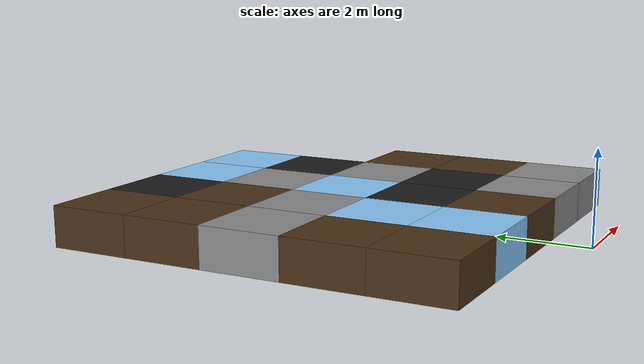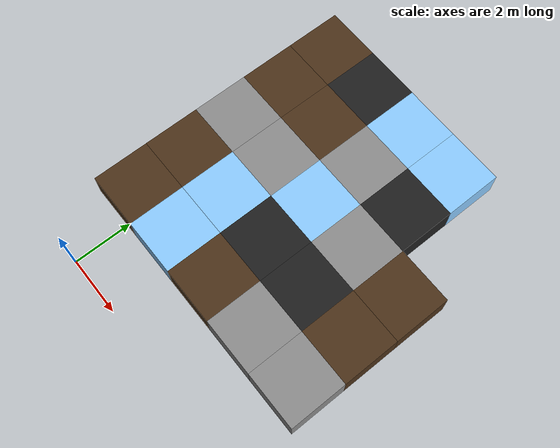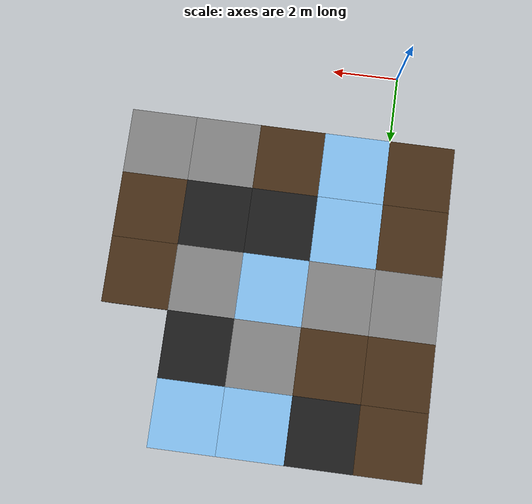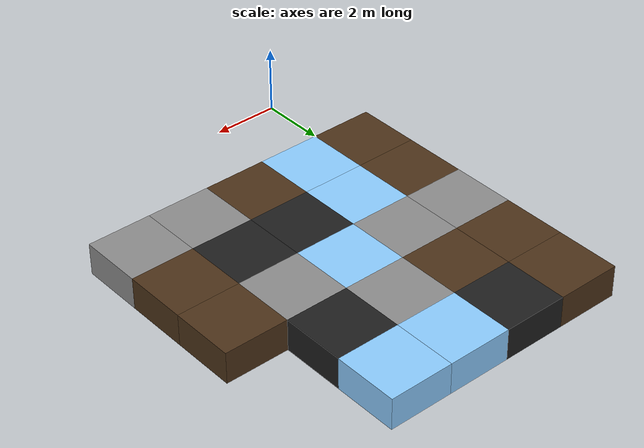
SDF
<sdf version="1.5">
 <world name="squares_example">
  <model name="tile_15_17">
   <static>true</static>
   <pose>-1.000 3.000 -0.500 0 0 0</pose>
   <link name="link">
    <collision name="col">
     <geometry><box><size>2.0 2.0 1.0</size></box></geometry>
     <surface>
      <friction>
       <ode><mu>0.6</mu><mu2>0.4</mu2><fdir1>1 0 0</fdir1><slip1>0.08</slip1><slip2>0.08</slip2></ode>
       <torsional>
        <coefficient>0.03</coefficient>
        <use_patch_radius>false</use_patch_radius>
        <surface_radius>0.12</surface_radius>
        <ode><slip>0.0</slip></ode>
       </torsional>
      </friction>
      <bounce><restitution_coefficient>0.0</restitution_coefficient><threshold>0.1</threshold></bounce>
      <contact>
       <ode><kp>1000000.0</kp><kd>10000.0</kd><max_vel>0.01</max_vel><min_depth>0.0</min_depth></ode>
      </contact>
     </surface>
    </collision>
    <visual name="visual">
     <geometry><box><size>2.0 2.0 1.0</size></box></geometry>
     <material>
      <diffuse>0.30 0.20 0.10 1</diffuse>
      <ambient>0 0 0 0</ambient>
      <specular>0 0 0 1</specular>
      <emissive>0 0 0 1</emissive>
     </material>
    </visual>
   </link>
  </model>
  <model name="tile_16_17">
   <static>true</static>
   <pose>1.000 3.000 -0.500 0 0 0</pose>
   <link name="link">
    <collision name="col">
     <geometry><box><size>2.0 2.0 1.0</size></box></geometry>
     <surface>
      <friction>
       <ode><mu>0.03</mu><mu2>0.02</mu2><fdir1>1 0 0</fdir1><slip1>0.03</slip1><slip2>0.03</slip2></ode>
       <torsional>
        <coefficient>0.005</coefficient>
        <use_patch_radius>false</use_patch_radius>
        <surface_radius>0.12</surface_radius>
        <ode><slip>0.01</slip></ode>
       </torsional>
      </friction>
      <bounce><restitution_coefficient>0.0</restitution_coefficient><threshold>0.1</threshold></bounce>
      <contact>
       <ode><kp>10000000.0</kp><kd>1000.0</kd><max_vel>0.01</max_vel><min_depth>0.0</min_depth></ode>
      </contact>
     </surface>
    </collision>
    <visual name="visual">
     <geometry><box><size>2.0 2.0 1.0</size></box></geometry>
     <material>
      <diffuse>0.55 0.80 1.00 1</diffuse>
      <ambient>0 0 0 0</ambient>
      <specular>0 0 0 1</specular>
      <emissive>0 0 0 1</emissive>
     </material>
    </visual>
   </link>
  </model>
  <model name="tile_17_17">
   <static>true</static>
   <pose>3.000 3.000 -0.500 0 0 0</pose>
   <link name="link">
    <collision name="col">
     <geometry><box><size>2.0 2.0 1.0</size></box></geometry>
     <surface>
      <friction>
       <ode><mu>0.6</mu><mu2>0.4</mu2><fdir1>1 0 0</fdir1><slip1>0.08</slip1><slip2>0.08</slip2></ode>
       <torsional>
        <coefficient>0.03</coefficient>
        <use_patch_radius>false</use_patch_radius>
        <surface_radius>0.12</surface_radius>
        <ode><slip>0.0</slip></ode>
       </torsional>
      </friction>
      <bounce><restitution_coefficient>0.0</restitution_coefficient><threshold>0.1</threshold></bounce>
      <contact>
       <ode><kp>1000000.0</kp><kd>10000.0</kd><max_vel>0.01</max_vel><min_depth>0.0</min_depth></ode>
      </contact>
     </surface>
    </collision>
    <visual name="visual">
     <geometry><box><size>2.0 2.0 1.0</size></box></geometry>
     <material>
      <diffuse>0.30 0.20 0.10 1</diffuse>
      <ambient>0 0 0 0</ambient>
      <specular>0 0 0 1</specular>
      <emissive>0 0 0 1</emissive>
     </material>
    </visual>
   </link>
  </model>
  <model name="tile_18_17">
   <static>true</static>
   <pose>5.000 3.000 -0.500 0 0 0</pose>
   <link name="link">
    <collision name="col">
     <geometry><box><size>2.0 2.0 1.0</size></box></geometry>
     <surface>
      <friction>
       <ode><mu>0.8</mu><mu2>0.3</mu2><fdir1>1 0 0</fdir1><slip1>0.0</slip1><slip2>0.0</slip2></ode>
       <torsional>
        <coefficient>0.03</coefficient>
        <use_patch_radius>false</use_patch_radius>
        <surface_radius>0.12</surface_radius>
        <ode><slip>0.0</slip></ode>
       </torsional>
      </friction>
      <bounce><restitution_coefficient>0.0</restitution_coefficient><threshold>0.1</threshold></bounce>
      <contact>
       <ode><kp>10000000000.0</kp><kd>10000000.0</kd><max_vel>0.01</max_vel><min_depth>0.0</min_depth></ode>
      </contact>
     </surface>
    </collision>
    <visual name="visual">
     <geometry><box><size>2.0 2.0 1.0</size></box></geometry>
     <material>
      <diffuse>0.55 0.55 0.55 1</diffuse>
      <ambient>0 0 0 0</ambient>
      <specular>0 0 0 1</specular>
      <emissive>0 0 0 1</emissive>
     </material>
    </visual>
   </link>
  </model>
  <model name="tile_19_17">
   <static>true</static>
   <pose>7.000 3.000 -0.500 0 0 0</pose>
   <link name="link">
    <collision name="col">
     <geometry><box><size>2.0 2.0 1.0</size></box></geometry>
     <surface>
      <friction>
       <ode><mu>0.8</mu><mu2>0.3</mu2><fdir1>1 0 0</fdir1><slip1>0.0</slip1><slip2>0.0</slip2></ode>
       <torsional>
        <coefficient>0.03</coefficient>
        <use_patch_radius>false</use_patch_radius>
        <surface_radius>0.12</surface_radius>
        <ode><slip>0.0</slip></ode>
       </torsional>
      </friction>
      <bounce><restitution_coefficient>0.0</restitution_coefficient><threshold>0.1</threshold></bounce>
      <contact>
       <ode><kp>10000000000.0</kp><kd>10000000.0</kd><max_vel>0.01</max_vel><min_depth>0.0</min_depth></ode>
      </contact>
     </surface>
    </collision>
    <visual name="visual">
     <geometry><box><size>2.0 2.0 1.0</size></box></geometry>
     <material>
      <diffuse>0.55 0.55 0.55 1</diffuse>
      <ambient>0 0 0 0</ambient>
      <specular>0 0 0 1</specular>
      <emissive>0 0 0 1</emissive>
     </material>
    </visual>
   </link>
  </model>
  <model name="tile_15_18">
   <static>true</static>
   <pose>-1.000 5.000 -0.500 0 0 0</pose>
   <link name="link">
    <collision name="col">
     <geometry><box><size>2.0 2.0 1.0</size></box></geometry>
     <surface>
      <friction>
       <ode><mu>0.6</mu><mu2>0.4</mu2><fdir1>1 0 0</fdir1><slip1>0.08</slip1><slip2>0.08</slip2></ode>
       <torsional>
        <coefficient>0.03</coefficient>
        <use_patch_radius>false</use_patch_radius>
        <surface_radius>0.12</surface_radius>
        <ode><slip>0.0</slip></ode>
       </torsional>
      </friction>
      <bounce><restitution_coefficient>0.0</restitution_coefficient><threshold>0.1</threshold></bounce>
      <contact>
       <ode><kp>1000000.0</kp><kd>10000.0</kd><max_vel>0.01</max_vel><min_depth>0.0</min_depth></ode>
      </contact>
     </surface>
    </collision>
    <visual name="visual">
     <geometry><box><size>2.0 2.0 1.0</size></box></geometry>
     <material>
      <diffuse>0.30 0.20 0.10 1</diffuse>
      <ambient>0 0 0 0</ambient>
      <specular>0 0 0 1</specular>
      <emissive>0 0 0 1</emissive>
     </material>
    </visual>
   </link>
  </model>
  <model name="tile_16_18">
   <static>true</static>
   <pose>1.000 5.000 -0.500 0 0 0</pose>
   <link name="link">
    <collision name="col">
     <geometry><box><size>2.0 2.0 1.0</size></box></geometry>
     <surface>
      <friction>
       <ode><mu>0.03</mu><mu2>0.02</mu2><fdir1>1 0 0</fdir1><slip1>0.03</slip1><slip2>0.03</slip2></ode>
       <torsional>
        <coefficient>0.005</coefficient>
        <use_patch_radius>false</use_patch_radius>
        <surface_radius>0.12</surface_radius>
        <ode><slip>0.01</slip></ode>
       </torsional>
      </friction>
      <bounce><restitution_coefficient>0.0</restitution_coefficient><threshold>0.1</threshold></bounce>
      <contact>
       <ode><kp>10000000.0</kp><kd>1000.0</kd><max_vel>0.01</max_vel><min_depth>0.0</min_depth></ode>
      </contact>
     </surface>
    </collision>
    <visual name="visual">
     <geometry><box><size>2.0 2.0 1.0</size></box></geometry>
     <material>
      <diffuse>0.55 0.80 1.00 1</diffuse>
      <ambient>0 0 0 0</ambient>
      <specular>0 0 0 1</specular>
      <emissive>0 0 0 1</emissive>
     </material>
    </visual>
   </link>
  </model>
  <model name="tile_17_18">
   <static>true</static>
   <pose>3.000 5.000 -0.500 0 0 0</pose>
   <link name="link">
    <collision name="col">
     <geometry><box><size>2.0 2.0 1.0</size></box></geometry>
     <surface>
      <friction>
       <ode><mu>0.4</mu><mu2>0.15</mu2><fdir1>1 0 0</fdir1><slip1>0.0</slip1><slip2>0.0</slip2></ode>
       <torsional>
        <coefficient>0.03</coefficient>
        <use_patch_radius>false</use_patch_radius>
        <surface_radius>0.12</surface_radius>
        <ode><slip>0.0</slip></ode>
       </torsional>
      </friction>
      <bounce><restitution_coefficient>0.0</restitution_coefficient><threshold>0.1</threshold></bounce>
      <contact>
       <ode><kp>1000000000.0</kp><kd>1000000.0</kd><max_vel>0.01</max_vel><min_depth>0.0</min_depth></ode>
      </contact>
     </surface>
    </collision>
    <visual name="visual">
     <geometry><box><size>2.0 2.0 1.0</size></box></geometry>
     <material>
      <diffuse>0.12 0.12 0.12 1</diffuse>
      <ambient>0 0 0 0</ambient>
      <specular>0 0 0 1</specular>
      <emissive>0 0 0 1</emissive>
     </material>
    </visual>
   </link>
  </model>
  <model name="tile_18_18">
   <static>true</static>
   <pose>5.000 5.000 -0.500 0 0 0</pose>
   <link name="link">
    <collision name="col">
     <geometry><box><size>2.0 2.0 1.0</size></box></geometry>
     <surface>
      <friction>
       <ode><mu>0.4</mu><mu2>0.15</mu2><fdir1>1 0 0</fdir1><slip1>0.0</slip1><slip2>0.0</slip2></ode>
       <torsional>
        <coefficient>0.03</coefficient>
        <use_patch_radius>false</use_patch_radius>
        <surface_radius>0.12</surface_radius>
        <ode><slip>0.0</slip></ode>
       </torsional>
      </friction>
      <bounce><restitution_coefficient>0.0</restitution_coefficient><threshold>0.1</threshold></bounce>
      <contact>
       <ode><kp>1000000000.0</kp><kd>1000000.0</kd><max_vel>0.01</max_vel><min_depth>0.0</min_depth></ode>
      </contact>
     </surface>
    </collision>
    <visual name="visual">
     <geometry><box><size>2.0 2.0 1.0</size></box></geometry>
     <material>
      <diffuse>0.12 0.12 0.12 1</diffuse>
      <ambient>0 0 0 0</ambient>
      <specular>0 0 0 1</specular>
      <emissive>0 0 0 1</emissive>
     </material>
    </visual>
   </link>
  </model>
  <model name="tile_19_18">
   <static>true</static>
   <pose>7.000 5.000 -0.500 0 0 0</pose>
   <link name="link">
    <collision name="col">
     <geometry><box><size>2.0 2.0 1.0</size></box></geometry>
     <surface>
      <friction>
       <ode><mu>0.6</mu><mu2>0.4</mu2><fdir1>1 0 0</fdir1><slip1>0.08</slip1><slip2>0.08</slip2></ode>
       <torsional>
        <coefficient>0.03</coefficient>
        <use_patch_radius>false</use_patch_radius>
        <surface_radius>0.12</surface_radius>
        <ode><slip>0.0</slip></ode>
       </torsional>
      </friction>
      <bounce><restitution_coefficient>0.0</restitution_coefficient><threshold>0.1</threshold></bounce>
      <contact>
       <ode><kp>1000000.0</kp><kd>10000.0</kd><max_vel>0.01</max_vel><min_depth>0.0</min_depth></ode>
      </contact>
     </surface>
    </collision>
    <visual name="visual">
     <geometry><box><size>2.0 2.0 1.0</size></box></geometry>
     <material>
      <diffuse>0.30 0.20 0.10 1</diffuse>
      <ambient>0 0 0 0</ambient>
      <specular>0 0 0 1</specular>
      <emissive>0 0 0 1</emissive>
     </material>
    </visual>
   </link>
  </model>
  <model name="tile_15_19">
   <static>true</static>
   <pose>-1.000 7.000 -0.500 0 0 0</pose>
   <link name="link">
    <collision name="col">
     <geometry><box><size>2.0 2.0 1.0</size></box></geometry>
     <surface>
      <friction>
       <ode><mu>0.8</mu><mu2>0.3</mu2><fdir1>1 0 0</fdir1><slip1>0.0</slip1><slip2>0.0</slip2></ode>
       <torsional>
        <coefficient>0.03</coefficient>
        <use_patch_radius>false</use_patch_radius>
        <surface_radius>0.12</surface_radius>
        <ode><slip>0.0</slip></ode>
       </torsional>
      </friction>
      <bounce><restitution_coefficient>0.0</restitution_coefficient><threshold>0.1</threshold></bounce>
      <contact>
       <ode><kp>10000000000.0</kp><kd>10000000.0</kd><max_vel>0.01</max_vel><min_depth>0.0</min_depth></ode>
      </contact>
     </surface>
    </collision>
    <visual name="visual">
     <geometry><box><size>2.0 2.0 1.0</size></box></geometry>
     <material>
      <diffuse>0.55 0.55 0.55 1</diffuse>
      <ambient>0 0 0 0</ambient>
      <specular>0 0 0 1</specular>
      <emissive>0 0 0 1</emissive>
     </material>
    </visual>
   </link>
  </model>
  <model name="tile_16_19">
   <static>true</static>
   <pose>1.000 7.000 -0.500 0 0 0</pose>
   <link name="link">
    <collision name="col">
     <geometry><box><size>2.0 2.0 1.0</size></box></geometry>
     <surface>
      <friction>
       <ode><mu>0.8</mu><mu2>0.3</mu2><fdir1>1 0 0</fdir1><slip1>0.0</slip1><slip2>0.0</slip2></ode>
       <torsional>
        <coefficient>0.03</coefficient>
        <use_patch_radius>false</use_patch_radius>
        <surface_radius>0.12</surface_radius>
        <ode><slip>0.0</slip></ode>
       </torsional>
      </friction>
      <bounce><restitution_coefficient>0.0</restitution_coefficient><threshold>0.1</threshold></bounce>
      <contact>
       <ode><kp>10000000000.0</kp><kd>10000000.0</kd><max_vel>0.01</max_vel><min_depth>0.0</min_depth></ode>
      </contact>
     </surface>
    </collision>
    <visual name="visual">
     <geometry><box><size>2.0 2.0 1.0</size></box></geometry>
     <material>
      <diffuse>0.55 0.55 0.55 1</diffuse>
      <ambient>0 0 0 0</ambient>
      <specular>0 0 0 1</specular>
      <emissive>0 0 0 1</emissive>
     </material>
    </visual>
   </link>
  </model>
  <model name="tile_17_19">
   <static>true</static>
   <pose>3.000 7.000 -0.500 0 0 0</pose>
   <link name="link">
    <collision name="col">
     <geometry><box><size>2.0 2.0 1.0</size></box></geometry>
     <surface>
      <friction>
       <ode><mu>0.03</mu><mu2>0.02</mu2><fdir1>1 0 0</fdir1><slip1>0.03</slip1><slip2>0.03</slip2></ode>
       <torsional>
        <coefficient>0.005</coefficient>
        <use_patch_radius>false</use_patch_radius>
        <surface_radius>0.12</surface_radius>
        <ode><slip>0.01</slip></ode>
       </torsional>
      </friction>
      <bounce><restitution_coefficient>0.0</restitution_coefficient><threshold>0.1</threshold></bounce>
      <contact>
       <ode><kp>10000000.0</kp><kd>1000.0</kd><max_vel>0.01</max_vel><min_depth>0.0</min_depth></ode>
      </contact>
     </surface>
    </collision>
    <visual name="visual">
     <geometry><box><size>2.0 2.0 1.0</size></box></geometry>
     <material>
      <diffuse>0.55 0.80 1.00 1</diffuse>
      <ambient>0 0 0 0</ambient>
      <specular>0 0 0 1</specular>
      <emissive>0 0 0 1</emissive>
     </material>
    </visual>
   </link>
  </model>
  <model name="tile_18_19">
   <static>true</static>
   <pose>5.000 7.000 -0.500 0 0 0</pose>
   <link name="link">
    <collision name="col">
     <geometry><box><size>2.0 2.0 1.0</size></box></geometry>
     <surface>
      <friction>
       <ode><mu>0.8</mu><mu2>0.3</mu2><fdir1>1 0 0</fdir1><slip1>0.0</slip1><slip2>0.0</slip2></ode>
       <torsional>
        <coefficient>0.03</coefficient>
        <use_patch_radius>false</use_patch_radius>
        <surface_radius>0.12</surface_radius>
        <ode><slip>0.0</slip></ode>
       </torsional>
      </friction>
      <bounce><restitution_coefficient>0.0</restitution_coefficient><threshold>0.1</threshold></bounce>
      <contact>
       <ode><kp>10000000000.0</kp><kd>10000000.0</kd><max_vel>0.01</max_vel><min_depth>0.0</min_depth></ode>
      </contact>
     </surface>
    </collision>
    <visual name="visual">
     <geometry><box><size>2.0 2.0 1.0</size></box></geometry>
     <material>
      <diffuse>0.55 0.55 0.55 1</diffuse>
      <ambient>0 0 0 0</ambient>
      <specular>0 0 0 1</specular>
      <emissive>0 0 0 1</emissive>
     </material>
    </visual>
   </link>
  </model>
  <model name="tile_19_19">
   <static>true</static>
   <pose>7.000 7.000 -0.500 0 0 0</pose>
   <link name="link">
    <collision name="col">
     <geometry><box><size>2.0 2.0 1.0</size></box></geometry>
     <surface>
      <friction>
       <ode><mu>0.6</mu><mu2>0.4</mu2><fdir1>1 0 0</fdir1><slip1>0.08</slip1><slip2>0.08</slip2></ode>
       <torsional>
        <coefficient>0.03</coefficient>
        <use_patch_radius>false</use_patch_radius>
        <surface_radius>0.12</surface_radius>
        <ode><slip>0.0</slip></ode>
       </torsional>
      </friction>
      <bounce><restitution_coefficient>0.0</restitution_coefficient><threshold>0.1</threshold></bounce>
      <contact>
       <ode><kp>1000000.0</kp><kd>10000.0</kd><max_vel>0.01</max_vel><min_depth>0.0</min_depth></ode>
      </contact>
     </surface>
    </collision>
    <visual name="visual">
     <geometry><box><size>2.0 2.0 1.0</size></box></geometry>
     <material>
      <diffuse>0.30 0.20 0.10 1</diffuse>
      <ambient>0 0 0 0</ambient>
      <specular>0 0 0 1</specular>
      <emissive>0 0 0 1</emissive>
     </material>
    </visual>
   </link>
  </model>
  <model name="tile_15_20">
   <static>true</static>
   <pose>-1.000 9.000 -0.500 0 0 0</pose>
   <link name="link">
    <collision name="col">
     <geometry><box><size>2.0 2.0 1.0</size></box></geometry>
     <surface>
      <friction>
       <ode><mu>0.6</mu><mu2>0.4</mu2><fdir1>1 0 0</fdir1><slip1>0.08</slip1><slip2>0.08</slip2></ode>
       <torsional>
        <coefficient>0.03</coefficient>
        <use_patch_radius>false</use_patch_radius>
        <surface_radius>0.12</surface_radius>
        <ode><slip>0.0</slip></ode>
       </torsional>
      </friction>
      <bounce><restitution_coefficient>0.0</restitution_coefficient><threshold>0.1</threshold></bounce>
      <contact>
       <ode><kp>1000000.0</kp><kd>10000.0</kd><max_vel>0.01</max_vel><min_depth>0.0</min_depth></ode>
      </contact>
     </surface>
    </collision>
    <visual name="visual">
     <geometry><box><size>2.0 2.0 1.0</size></box></geometry>
     <material>
      <diffuse>0.30 0.20 0.10 1</diffuse>
      <ambient>0 0 0 0</ambient>
      <specular>0 0 0 1</specular>
      <emissive>0 0 0 1</emissive>
     </material>
    </visual>
   </link>
  </model>
  <model name="tile_16_20">
   <static>true</static>
   <pose>1.000 9.000 -0.500 0 0 0</pose>
   <link name="link">
    <collision name="col">
     <geometry><box><size>2.0 2.0 1.0</size></box></geometry>
     <surface>
      <friction>
       <ode><mu>0.6</mu><mu2>0.4</mu2><fdir1>1 0 0</fdir1><slip1>0.08</slip1><slip2>0.08</slip2></ode>
       <torsional>
        <coefficient>0.03</coefficient>
        <use_patch_radius>false</use_patch_radius>
        <surface_radius>0.12</surface_radius>
        <ode><slip>0.0</slip></ode>
       </torsional>
      </friction>
      <bounce><restitution_coefficient>0.0</restitution_coefficient><threshold>0.1</threshold></bounce>
      <contact>
       <ode><kp>1000000.0</kp><kd>10000.0</kd><max_vel>0.01</max_vel><min_depth>0.0</min_depth></ode>
      </contact>
     </surface>
    </collision>
    <visual name="visual">
     <geometry><box><size>2.0 2.0 1.0</size></box></geometry>
     <material>
      <diffuse>0.30 0.20 0.10 1</diffuse>
      <ambient>0 0 0 0</ambient>
      <specular>0 0 0 1</specular>
      <emissive>0 0 0 1</emissive>
     </material>
    </visual>
   </link>
  </model>
  <model name="tile_17_20">
   <static>true</static>
   <pose>3.000 9.000 -0.500 0 0 0</pose>
   <link name="link">
    <collision name="col">
     <geometry><box><size>2.0 2.0 1.0</size></box></geometry>
     <surface>
      <friction>
       <ode><mu>0.8</mu><mu2>0.3</mu2><fdir1>1 0 0</fdir1><slip1>0.0</slip1><slip2>0.0</slip2></ode>
       <torsional>
        <coefficient>0.03</coefficient>
        <use_patch_radius>false</use_patch_radius>
        <surface_radius>0.12</surface_radius>
        <ode><slip>0.0</slip></ode>
       </torsional>
      </friction>
      <bounce><restitution_coefficient>0.0</restitution_coefficient><threshold>0.1</threshold></bounce>
      <contact>
       <ode><kp>10000000000.0</kp><kd>10000000.0</kd><max_vel>0.01</max_vel><min_depth>0.0</min_depth></ode>
      </contact>
     </surface>
    </collision>
    <visual name="visual">
     <geometry><box><size>2.0 2.0 1.0</size></box></geometry>
     <material>
      <diffuse>0.55 0.55 0.55 1</diffuse>
      <ambient>0 0 0 0</ambient>
      <specular>0 0 0 1</specular>
      <emissive>0 0 0 1</emissive>
     </material>
    </visual>
   </link>
  </model>
  <model name="tile_18_20">
   <static>true</static>
   <pose>5.000 9.000 -0.500 0 0 0</pose>
   <link name="link">
    <collision name="col">
     <geometry><box><size>2.0 2.0 1.0</size></box></geometry>
     <surface>
      <friction>
       <ode><mu>0.4</mu><mu2>0.15</mu2><fdir1>1 0 0</fdir1><slip1>0.0</slip1><slip2>0.0</slip2></ode>
       <torsional>
        <coefficient>0.03</coefficient>
        <use_patch_radius>false</use_patch_radius>
        <surface_radius>0.12</surface_radius>
        <ode><slip>0.0</slip></ode>
       </torsional>
      </friction>
      <bounce><restitution_coefficient>0.0</restitution_coefficient><threshold>0.1</threshold></bounce>
      <contact>
       <ode><kp>1000000000.0</kp><kd>1000000.0</kd><max_vel>0.01</max_vel><min_depth>0.0</min_depth></ode>
      </contact>
     </surface>
    </collision>
    <visual name="visual">
     <geometry><box><size>2.0 2.0 1.0</size></box></geometry>
     <material>
      <diffuse>0.12 0.12 0.12 1</diffuse>
      <ambient>0 0 0 0</ambient>
      <specular>0 0 0 1</specular>
      <emissive>0 0 0 1</emissive>
     </material>
    </visual>
   </link>
  </model>
  <model name="tile_15_21">
   <static>true</static>
   <pose>-1.000 11.000 -0.500 0 0 0</pose>
   <link name="link">
    <collision name="col">
     <geometry><box><size>2.0 2.0 1.0</size></box></geometry>
     <surface>
      <friction>
       <ode><mu>0.6</mu><mu2>0.4</mu2><fdir1>1 0 0</fdir1><slip1>0.08</slip1><slip2>0.08</slip2></ode>
       <torsional>
        <coefficient>0.03</coefficient>
        <use_patch_radius>false</use_patch_radius>
        <surface_radius>0.12</surface_radius>
        <ode><slip>0.0</slip></ode>
       </torsional>
      </friction>
      <bounce><restitution_coefficient>0.0</restitution_coefficient><threshold>0.1</threshold></bounce>
      <contact>
       <ode><kp>1000000.0</kp><kd>10000.0</kd><max_vel>0.01</max_vel><min_depth>0.0</min_depth></ode>
      </contact>
     </surface>
    </collision>
    <visual name="visual">
     <geometry><box><size>2.0 2.0 1.0</size></box></geometry>
     <material>
      <diffuse>0.30 0.20 0.10 1</diffuse>
      <ambient>0 0 0 0</ambient>
      <specular>0 0 0 1</specular>
      <emissive>0 0 0 1</emissive>
     </material>
    </visual>
   </link>
  </model>
  <model name="tile_16_21">
   <static>true</static>
   <pose>1.000 11.000 -0.500 0 0 0</pose>
   <link name="link">
    <collision name="col">
     <geometry><box><size>2.0 2.0 1.0</size></box></geometry>
     <surface>
      <friction>
       <ode><mu>0.4</mu><mu2>0.15</mu2><fdir1>1 0 0</fdir1><slip1>0.0</slip1><slip2>0.0</slip2></ode>
       <torsional>
        <coefficient>0.03</coefficient>
        <use_patch_radius>false</use_patch_radius>
        <surface_radius>0.12</surface_radius>
        <ode><slip>0.0</slip></ode>
       </torsional>
      </friction>
      <bounce><restitution_coefficient>0.0</restitution_coefficient><threshold>0.1</threshold></bounce>
      <contact>
       <ode><kp>1000000000.0</kp><kd>1000000.0</kd><max_vel>0.01</max_vel><min_depth>0.0</min_depth></ode>
      </contact>
     </surface>
    </collision>
    <visual name="visual">
     <geometry><box><size>2.0 2.0 1.0</size></box></geometry>
     <material>
      <diffuse>0.12 0.12 0.12 1</diffuse>
      <ambient>0 0 0 0</ambient>
      <specular>0 0 0 1</specular>
      <emissive>0 0 0 1</emissive>
     </material>
    </visual>
   </link>
  </model>
  <model name="tile_17_21">
   <static>true</static>
   <pose>3.000 11.000 -0.500 0 0 0</pose>
   <link name="link">
    <collision name="col">
     <geometry><box><size>2.0 2.0 1.0</size></box></geometry>
     <surface>
      <friction>
       <ode><mu>0.03</mu><mu2>0.02</mu2><fdir1>1 0 0</fdir1><slip1>0.03</slip1><slip2>0.03</slip2></ode>
       <torsional>
        <coefficient>0.005</coefficient>
        <use_patch_radius>false</use_patch_radius>
        <surface_radius>0.12</surface_radius>
        <ode><slip>0.01</slip></ode>
       </torsional>
      </friction>
      <bounce><restitution_coefficient>0.0</restitution_coefficient><threshold>0.1</threshold></bounce>
      <contact>
       <ode><kp>10000000.0</kp><kd>1000.0</kd><max_vel>0.01</max_vel><min_depth>0.0</min_depth></ode>
      </contact>
     </surface>
    </collision>
    <visual name="visual">
     <geometry><box><size>2.0 2.0 1.0</size></box></geometry>
     <material>
      <diffuse>0.55 0.80 1.00 1</diffuse>
      <ambient>0 0 0 0</ambient>
      <specular>0 0 0 1</specular>
      <emissive>0 0 0 1</emissive>
     </material>
    </visual>
   </link>
  </model>
  <model name="tile_18_21">
   <static>true</static>
   <pose>5.000 11.000 -0.500 0 0 0</pose>
   <link name="link">
    <collision name="col">
     <geometry><box><size>2.0 2.0 1.0</size></box></geometry>
     <surface>
      <friction>
       <ode><mu>0.03</mu><mu2>0.02</mu2><fdir1>1 0 0</fdir1><slip1>0.03</slip1><slip2>0.03</slip2></ode>
       <torsional>
        <coefficient>0.005</coefficient>
        <use_patch_radius>false</use_patch_radius>
        <surface_radius>0.12</surface_radius>
        <ode><slip>0.01</slip></ode>
       </torsional>
      </friction>
      <bounce><restitution_coefficient>0.0</restitution_coefficient><threshold>0.1</threshold></bounce>
      <contact>
       <ode><kp>10000000.0</kp><kd>1000.0</kd><max_vel>0.01</max_vel><min_depth>0.0</min_depth></ode>
      </contact>
     </surface>
    </collision>
    <visual name="visual">
     <geometry><box><size>2.0 2.0 1.0</size></box></geometry>
     <material>
      <diffuse>0.55 0.80 1.00 1</diffuse>
      <ambient>0 0 0 0</ambient>
      <specular>0 0 0 1</specular>
      <emissive>0 0 0 1</emissive>
     </material>
    </visual>
   </link>
  </model>
 </world>
</sdf>
